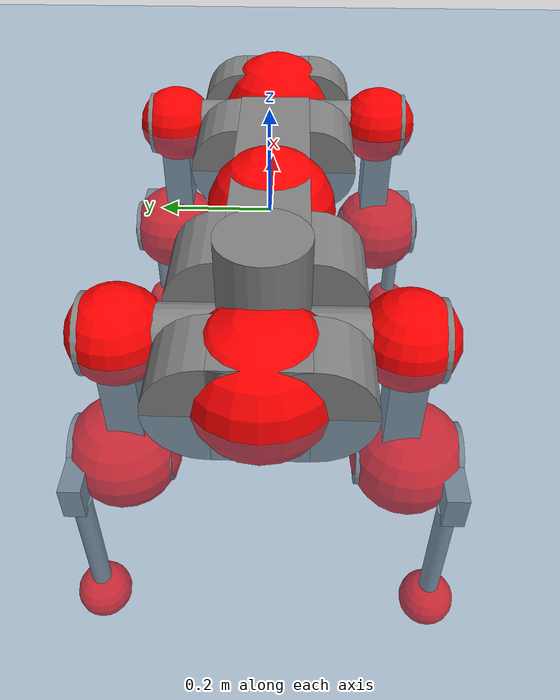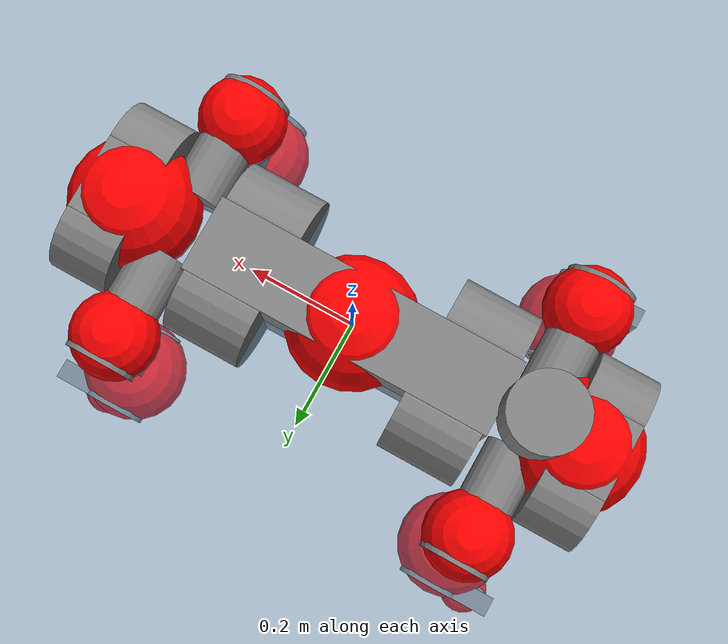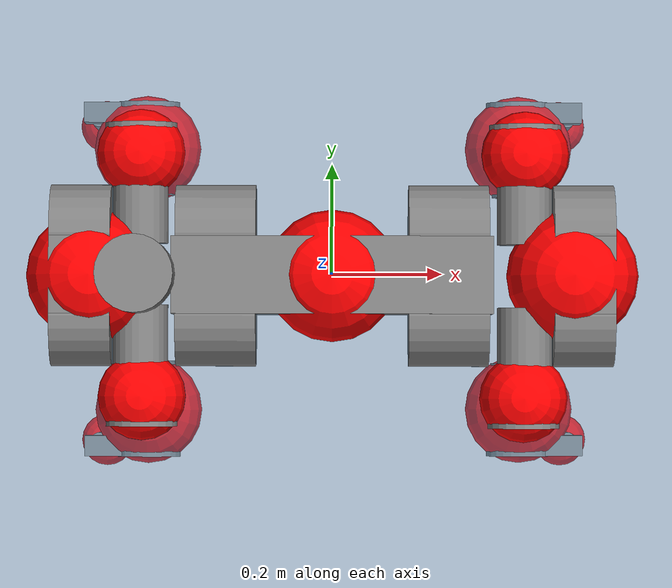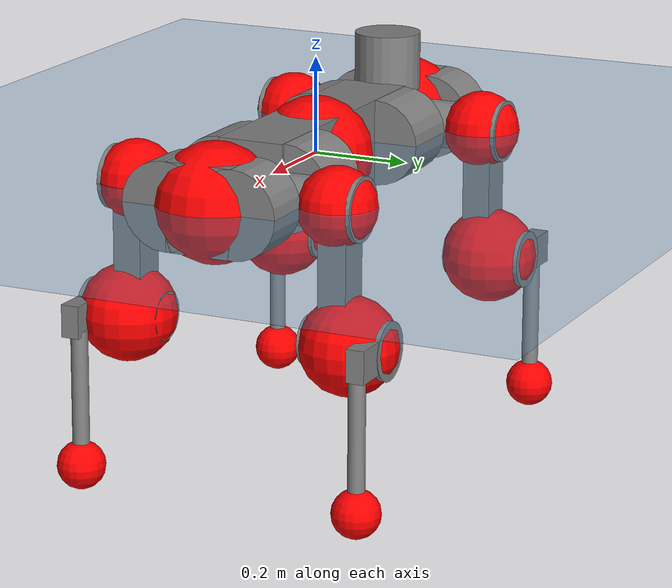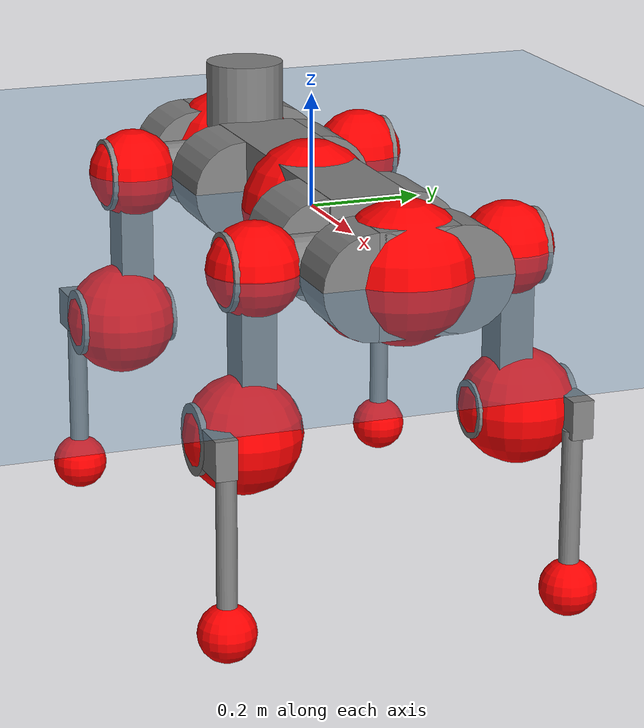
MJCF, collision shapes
<mujoco model="anymal_c">
  <compiler angle="radian" assetdir="assets" balanceinertia="true" inertiafromgeom="false"/>

  <option timestep="0.005" density="1.2" viscosity="2e-05"/>

  <size nkey="1"/>

  <visual>
    <quality shadowsize="8192"/>
    <map shadowclip="0.5"/>
  </visual>

  <default>
    <default class="/">
      <material specular="0" shininess="0.25"/>
      <geom contype="0" conaffinity="0" group="1" solref="-1000 -80"/>
      <site size="0.01 0.005 0.005" group="5"/>
      <general forcelimited="true" forcerange="-80 80" biastype="affine" gainprm="80" biasprm="0 -80 -2"/>
      <default class="anymal_c">
        <joint armature="0.01" damping="0.01" frictionloss="0.1"/>
        <default class="visual">
          <geom type="mesh" group="2"/>
          <default class="visual_zflip"/>
        </default>
        <default class="collision">
          <geom type="cylinder" group="3"/>
          <default class="foot">
            <geom size="0.03 0 0" type="sphere" condim="6" priority="1" friction="0.8 0.02 0.01" solimp="0.015 1 0.03"/>
          </default>
        </default>
      </default>
      <default class="reward_collision_sphere">
        <geom group="5" rgba="1 0 0 1"/>
      </default>
    </default>
  </default>

  <asset>
    <texture type="skybox" colorspace="auto" name="//unnamed_texture_0" builtin="gradient" rgb1="0.95 0.95 0.95" rgb2="0.95 0.95 0.95" width="100" height="600"/>
    <texture type="2d" colorspace="auto" name="texplane" builtin="checker" rgb1="0.345 0.575 0.748" rgb2="0.345 0.575 0.748" markrgb="1 1 1" width="512" height="512"/>
    <texture type="2d" colorspace="linear" name="base" file="base.png"/>
    <texture type="2d" colorspace="linear" name="top_shell" file="top_shell.png"/>
    <texture type="2d" colorspace="linear" name="bottom_shell" file="bottom_shell.png"/>
    <texture type="2d" colorspace="linear" name="remote" file="remote.png"/>
    <texture type="2d" colorspace="linear" name="hatch" file="hatch.png"/>
    <texture type="2d" colorspace="linear" name="handle" file="handle.png"/>
    <texture type="2d" colorspace="linear" name="face" file="face.png"/>
    <texture type="2d" colorspace="linear" name="battery" file="battery.png"/>
    <texture type="2d" colorspace="linear" name="lidar_cage" file="lidar_cage.png"/>
    <texture type="2d" colorspace="linear" name="depth_camera" file="depth_camera.png"/>
    <texture type="2d" colorspace="linear" name="wide_angle_camera" file="wide_angle_camera.png"/>
    <texture type="2d" colorspace="linear" name="lidar" file="lidar.png"/>
    <texture type="2d" colorspace="linear" name="drive" file="drive.png"/>
    <texture type="2d" colorspace="linear" name="hip_l" file="hip_l.png"/>
    <texture type="2d" colorspace="linear" name="shank_l" file="shank_l.png"/>
    <texture type="2d" colorspace="linear" name="foot" file="foot.png"/>
    <texture type="2d" colorspace="linear" name="thigh" file="thigh.png"/>
    <texture type="2d" colorspace="linear" name="shank_r" file="shank_r.png"/>
    <texture type="2d" colorspace="linear" name="hip_r" file="hip_r.png"/>
    <material name="MatPlane" class="/" texture="texplane" texuniform="true" texrepeat="2 2" specular="0.9" shininess="0.5"/>
    <material name="black_plastic" class="/" rgba="0.007 0.007 0.007 1"/>
    <material name="green" class="/" rgba="0.052 0.178 0.033 1"/>
    <material name="red" class="/" rgba="0.178 0.006 0.005 1"/>
    <material name="yellow" class="/" rgba="0.178 0.119 0.006 1"/>
    <material name="lwl" class="/" rgba="0.8 0.8 0.8 1"/>
    <material name="base" class="/" texture="base"/>
    <material name="top_shell" class="/" texture="top_shell"/>
    <material name="bottom_shell" class="/" texture="bottom_shell"/>
    <material name="hip_l" class="/" texture="hip_l"/>
    <material name="thigh" class="/" texture="thigh"/>
    <material name="shank_l" class="/" texture="shank_l"/>
    <material name="foot" class="/" texture="foot"/>
    <material name="hip_r" class="/" texture="hip_r"/>
    <material name="shank" class="/" texture="shank_r"/>
    <material name="hatch" class="/" texture="hatch"/>
    <material name="remote" class="/" texture="remote"/>
    <material name="handle" class="/" texture="handle"/>
    <material name="face" class="/" texture="face"/>
    <material name="depth_camera" class="/" texture="depth_camera"/>
    <material name="wide_angle_camera" class="/" texture="wide_angle_camera"/>
    <material name="battery" class="/" texture="battery"/>
    <material name="lidar_cage" class="/" texture="lidar_cage"/>
    <material name="lidar" class="/" texture="lidar"/>
    <material name="drive" class="/" texture="drive"/>
    <mesh name="base_0" class="/" file="base_0.obj"/>
    <mesh name="base_1" class="/" file="base_1.obj"/>
    <mesh name="base_2" class="/" file="base_2.obj"/>
    <mesh name="base_3" class="/" file="base_3.obj"/>
    <mesh name="base_4" class="/" file="base_4.obj"/>
    <mesh name="base_5" class="/" file="base_5.obj"/>
    <mesh name="top_shell" class="/" file="top_shell.obj"/>
    <mesh name="bottom_shell" class="/" file="bottom_shell.obj"/>
    <mesh name="remote" class="/" file="remote.obj"/>
    <mesh name="handle" class="/" file="handle.obj"/>
    <mesh name="face" class="/" file="face.obj"/>
    <mesh name="wide_angle_camera" class="/" file="wide_angle_camera.obj"/>
    <mesh name="depth_camera" class="/" file="depth_camera.obj"/>
    <mesh name="battery" class="/" file="battery.obj"/>
    <mesh name="lidar_cage" class="/" file="lidar_cage.obj"/>
    <mesh name="lidar" class="/" file="lidar.obj"/>
    <mesh name="drive" class="/" file="drive.obj"/>
    <mesh name="hip_l" class="/" file="hip_l.obj"/>
    <mesh name="thigh" class="/" file="thigh.obj"/>
    <mesh name="shank_l" class="/" file="shank_l.obj"/>
    <mesh name="foot" class="/" file="foot.obj"/>
    <mesh name="hip_r" class="/" file="hip_r.obj"/>
    <mesh name="hatch" class="/" file="hatch.obj"/>
    <mesh name="shank_r" class="/" file="shank_r.obj"/>
  </asset>

  <worldbody>
    <geom name="floor" class="/" size="100 100 0.125" type="plane" group="0" material="MatPlane"/>
    <light name="toplight_shadow" class="/" pos="0 0 5" dir="0.0990148 0.0990148 -0.990148" type="directional" ambient="0.04 0.04 0.04" diffuse="0.55 0.55 0.55" specular="0.12 0.12 0.12"/>
    <light name="toplight_fill" class="/" pos="0 0 5" dir="0.0990148 0.0990148 -0.990148" type="directional" castshadow="false" ambient="0.04 0.04 0.04" diffuse="0.3 0.3 0.3" specular="0.08 0.08 0.08"/>
    <body name="trunk" childclass="anymal_c" pos="0.000696274 -0.00236153 -0.0022806" quat="0.999999 -0.00107021 -0.000294047 -0.000369306">
      <inertial pos="-0.000508998 0.000564419 0.0494483" quat="0.494909 0.49406 0.510646 0.500211" mass="20.0417" diaginertia="0.564253 0.886468 0.193746"/>
      <joint name="//unnamed_joint_0" type="free" armature="0" damping="0" frictionloss="0"/>
      <geom name="//unnamed_geom_1" class="visual" material="green" mesh="base_0"/>
      <geom name="//unnamed_geom_2" class="visual" material="yellow" mesh="base_1"/>
      <geom name="//unnamed_geom_3" class="visual" material="red" mesh="base_2"/>
      <geom name="//unnamed_geom_4" class="visual" material="black_plastic" mesh="base_3"/>
      <geom name="//unnamed_geom_5" class="visual" material="lwl" mesh="base_4"/>
      <geom name="//unnamed_geom_6" class="visual" material="base" mesh="base_5"/>
      <geom name="trunk_1" class="collision" size="0.291151 0.0702778 0.0903572" type="box"/>
      <geom name="trunk_2" class="collision" size="0.0903572 0.0727877" pos="0.21142 0.0747474 0" quat="0.707107 0 0.707107 0"/>
      <geom name="trunk_3" class="collision" size="0.0903572 0.0727877" pos="-0.21142 0.0747474 0" quat="0.707107 0 0.707107 0"/>
      <geom name="trunk_4" class="collision" size="0.0903572 0.0727877" pos="0.21142 -0.0747474 0" quat="0.707107 0 0.707107 0"/>
      <geom name="trunk_5" class="collision" size="0.0903572 0.0727877" pos="-0.21142 -0.0747474 0" quat="0.707107 0 0.707107 0"/>
      <geom name="//unnamed_geom_12" class="visual" material="top_shell" mesh="top_shell"/>
      <geom name="//unnamed_geom_13" class="visual" material="bottom_shell" mesh="bottom_shell"/>
      <geom name="//unnamed_geom_14" class="visual" material="remote" mesh="remote"/>
      <geom name="//unnamed_geom_15" class="visual" material="handle" mesh="handle"/>
      <geom name="//unnamed_geom_16" class="visual" pos="0.402914 0 0" quat="1 0 0 0" material="face" mesh="face"/>
      <geom name="trunk_6" class="collision" size="0.0552183 0.0702778 0.0903572" pos="0.456376 0 0" type="box"/>
      <geom name="//unnamed_geom_18" class="collision" size="0.0903572 0.0552183" pos="0.456376 0.0747474 0" quat="0.707107 0 0.707107 0"/>
      <geom name="//unnamed_geom_19" class="collision" size="0.0903572 0.0552183" pos="0.456376 -0.0747474 0" quat="0.707107 0 0.707107 0"/>
      <geom name="//unnamed_geom_20" class="visual" pos="0.448746 0 -0.0283835" quat="0.965926 0 0.258819 0" material="depth_camera" mesh="depth_camera"/>
      <geom name="//unnamed_geom_21" class="visual" pos="0.49866 0 0.0145514" material="wide_angle_camera" mesh="wide_angle_camera"/>
      <geom name="//unnamed_geom_22" class="visual_zflip" pos="-0.402914 0 0" quat="0 0 0 1" material="face" mesh="face"/>
      <geom name="trunk_7" class="collision" size="0.0552183 0.0702778 0.0903572" pos="-0.456376 0 0" quat="0 0 0 1" type="box"/>
      <geom name="//unnamed_geom_24" class="collision" size="0.0903572 0.0552183" pos="-0.456376 -0.0747474 0" quat="0 -0.707107 0 0.707107"/>
      <geom name="//unnamed_geom_25" class="collision" size="0.0903572 0.0552183" pos="-0.456376 0.0747474 0" quat="0 -0.707107 0 0.707107"/>
      <geom name="//unnamed_geom_26" class="visual" pos="-0.448746 0 -0.0283835" quat="0 -0.258819 0 0.965926" material="depth_camera" mesh="depth_camera"/>
      <geom name="//unnamed_geom_27" class="visual_zflip" pos="-0.49866 0 0.0145514" quat="0 0 0 1" material="wide_angle_camera" mesh="wide_angle_camera"/>
      <geom name="//unnamed_geom_28" class="visual" material="battery" mesh="battery"/>
      <geom name="//unnamed_geom_29" class="visual" pos="0 0.0829023 0.0282378" quat="0.683013 -0.183013 0.183013 0.683013" material="depth_camera" mesh="depth_camera"/>
      <geom name="//unnamed_geom_30" class="visual" pos="0 -0.0829023 0.0282378" quat="0.683013 0.183013 0.183013 -0.683013" material="depth_camera" mesh="depth_camera"/>
      <geom name="//unnamed_geom_31" class="visual" pos="-0.353825 0 0.0714449" quat="1 0 0 0" material="lidar_cage" mesh="lidar_cage"/>
      <geom name="trunk_8" class="collision" size="0.0702778 0.0602381" pos="-0.353825 0 0.129767"/>
      <geom name="//unnamed_geom_33" class="visual" pos="-0.353825 3.76266e-05 0.138224" quat="0.707107 0 0 -0.707107" material="lidar" mesh="lidar"/>
      <geom name="//unnamed_geom_34" class="visual" pos="0.291517 0.111019 1.65223e-09" quat="0.258819 0.965926 0 0" material="drive" mesh="drive"/>
      <geom name="//unnamed_geom_35" class="visual" pos="0.291517 -0.111019 -1.65223e-09" quat="0.258819 -0.965926 0 0" material="drive" mesh="drive"/>
      <geom name="//unnamed_geom_36" class="visual" pos="-0.291517 0.111019 -1.65223e-09" quat="0 0 0.965926 -0.258819" material="drive" mesh="drive"/>
      <geom name="//unnamed_geom_37" class="visual" pos="-0.291517 -0.111019 1.65223e-09" quat="0 0 -0.965926 -0.258819" material="drive" mesh="drive"/>
      <geom name="//unnamed_geom_38" class="visual" pos="0.112757 0 0.0709589" quat="1 0 0 0" material="hatch" mesh="hatch"/>
      <geom name="//unnamed_geom_39" class="reward_collision_sphere" size="0.120476"/>
      <geom name="//unnamed_geom_40" class="reward_collision_sphere" size="0.120476" pos="0.437421 0 0"/>
      <geom name="//unnamed_geom_41" class="reward_collision_sphere" size="0.120476" pos="-0.437421 0 0"/>
      <site name="imu" pos="0.243297 0.00453812 0.0405653" size="0.0100397"/>
      <camera name="track" pos="0 -2.13564 0" quat="0.707107 0.707107 0 0" mode="trackcom"/>
      <camera name="ego_camera" pos="0.437421 0 -0.0388816" quat="-0.5 -0.5 0.5 0.5"/>
      <body name="LF_HIP" pos="0.291768 0.112136 0.00169166" quat="0.258732 0.965949 0.0005987 -0.00016562">
        <inertial pos="0.0553336 -0.0175658 -0.00781067" quat="-0.12961 0.711732 -0.128395 0.678346" mass="2.8263" diaginertia="0.00521607 0.00669666 0.00293648"/>
        <joint name="LF_HAA" pos="0 0 0" axis="0.999871 0.00383731 0.0155704" range="-0.774502 0.46832" armature="0.0105151" damping="0.00436657" frictionloss="0.102181"/>
        <geom name="//unnamed_geom_42" class="visual" pos="0 9.7193e-05 -1.59639e-05" quat="0.258819 -0.965926 0 0" material="hip_l" mesh="hip_l"/>
        <geom name="//unnamed_geom_43" class="visual" pos="0.0582256 -0.0717797 -0.0407336" quat="0.183013 -0.683013 0.683013 0.183013" material="drive" mesh="drive"/>
        <geom name="//unnamed_geom_44" class="collision" size="0.0501984 0.0702778" pos="0.0582256 -0.0127709 -0.00671193" quat="-0.353553 -0.612372 0.612372 -0.353553"/>
        <body name="LF_THIGH" pos="0.0598146 -0.0747897 -0.0381572" quat="0.18296 -0.68275 0.683327 0.18287">
          <inertial pos="0.0307276 -0.000814795 -0.239511" quat="0.992395 -0.0158296 -0.0798656 0.0923255" mass="3.20273" diaginertia="0.025901 0.041142 0.00363132"/>
          <joint name="LF_HFE" pos="0 0 0" axis="0.999939 -0.00701898 0.00853222" stiffness="0.0144083" range="-3.18837 3.13522" armature="0.00973048" damping="0.0109757" frictionloss="0.0867918"/>
          <geom name="//unnamed_geom_45" class="visual" pos="-0.00190551 -3.00263e-06 0" quat="0.707107 0 0 -0.707107" material="thigh" mesh="thigh"/>
          <geom name="//unnamed_geom_46" class="collision" size="0.065258 0.0401588" pos="0.0388819 0 0" quat="0.5 0.5 -0.5 -0.5"/>
          <geom name="//unnamed_geom_47" class="collision" size="0.0376488 0.0301191 0.141875" pos="0.0291614 0 -0.137363" quat="0.707107 0 0 -0.707107" type="box"/>
          <geom name="//unnamed_geom_48" class="visual" pos="0.0974963 0 -0.277031" quat="1 0 0 0" material="drive" mesh="drive"/>
          <geom name="//unnamed_geom_49" class="collision" size="0.0501984 0.0702778" pos="0.029453 0 -0.277031" quat="0.707107 0 0.707107 0"/>
          <geom name="//unnamed_geom_50" class="reward_collision_sphere" size="0.0803175" pos="0.0243012 0 0"/>
          <body name="LF_SHANK" pos="0.0983023 0.000684801 -0.277443" quat="1 0.000160926 4.23777e-05 0.000179018">
            <inertial pos="0.0045831 -0.0678851 -0.0799418" quat="0.99229 -0.119207 -0.0115085 -0.0318938" mass="0.594481" diaginertia="0.00856064 0.012459 0.000944197"/>
            <joint name="LF_KFE" pos="0 0 0" axis="0.99998 0.00357678 0.00530926" stiffness="0.00822281" range="-3.15747 3.17249" armature="0.00856353" damping="0.00238414" frictionloss="0.11236"/>
            <geom name="//unnamed_geom_51" class="visual" pos="-0.000621344 -0.00331304 0" quat="0.707107 0 0 -0.707107" material="shank_l" mesh="shank_l"/>
            <geom name="LF_kfe_act" class="collision" size="0.0602381 0.0200794" pos="0.0194409 0 0" quat="0.5 0.5 -0.5 -0.5"/>
            <geom name="//unnamed_geom_53" class="collision" size="0.0577272 0.0338839 0.0190754" pos="0.0194409 -0.0613986 0" quat="0.5 0.5 -0.5 -0.5" type="box"/>
            <geom name="//unnamed_geom_54" class="visual" pos="0.0126854 -0.0949824 -0.32852" quat="0.382683 0 0 -0.92388" material="foot" mesh="foot"/>
            <geom name="LF_calf" class="collision" size="0.0175695 0.141813" pos="0.0126852 -0.0939148 -0.16426" quat="0.707107 0 0 -0.707107"/>
            <geom name="LF_foot" class="foot" size="0.0277396" pos="0.0126852 -0.0939148 -0.306649" quat="0.707107 0 0 -0.707107"/>
            <geom name="//unnamed_geom_57" class="reward_collision_sphere" size="0.100397" pos="-0.0486024 0 0"/>
            <geom name="//unnamed_geom_58" class="reward_collision_sphere" size="0.0501984" pos="0.0126852 -0.0939148 -0.306649"/>
            <site name="LF_foot" class="foot" pos="0.0126852 -0.0939148 -0.306649" quat="0.707107 0 0 -0.707107" size="0.0100397"/>
          </body>
        </body>
      </body>
      <body name="RF_HIP" pos="0.292362 -0.114188 0.00364551" quat="0.259091 -0.965853 -0.000394017 -0.000819435">
        <inertial pos="0.0549546 0.0195853 -0.0107382" quat="0.134712 0.680767 0.128979 0.70836" mass="2.69417" diaginertia="0.00489881 0.00683756 0.00291597"/>
        <joint name="RF_HAA" pos="0 0 0" axis="0.999885 0.00031892 0.0151608" stiffness="0.00630204" range="-0.503086 0.741882" armature="0.00867921" damping="0.00400546" frictionloss="0.11089"/>
        <geom name="//unnamed_geom_59" class="visual" pos="0 -9.71923e-05 -1.59638e-05" quat="0.258819 0.965926 0 0" material="hip_r" mesh="hip_r"/>
        <geom name="//unnamed_geom_60" class="visual" pos="0.0582256 0.0717797 -0.0407336" quat="0.183013 0.683013 0.683013 -0.183013" material="drive" mesh="drive"/>
        <geom name="//unnamed_geom_61" class="collision" size="0.0501984 0.0702778" pos="0.0582256 0.0127709 -0.00671193" quat="-0.353553 0.612372 0.612372 0.353553"/>
        <body name="RF_THIGH" pos="0.0558144 0.0743486 -0.0404221" quat="0.183058 0.683315 0.682574 -0.183475">
          <inertial pos="0.0328165 -0.00252926 -0.238559" quat="0.994182 -0.00671405 -0.0714358 0.0803385" mass="3.17145" diaginertia="0.025327 0.0412942 0.0036132"/>
          <joint name="RF_HFE" pos="0 0 0" axis="0.999988 0.00494511 -3.07286e-05" range="-3.12459 3.18947" armature="0.00975256" damping="0.0133915" frictionloss="0.0875867"/>
          <geom name="//unnamed_geom_62" class="visual" pos="-0.00190551 -3.00263e-06 0" quat="0.707107 0 0 -0.707107" material="thigh" mesh="thigh"/>
          <geom name="//unnamed_geom_63" class="collision" size="0.065258 0.0401588" pos="0.0388819 0 0" quat="0.5 0.5 0.5 0.5"/>
          <geom name="//unnamed_geom_64" class="collision" size="0.0376488 0.0301191 0.141875" pos="0.0291614 0 -0.137363" quat="0.707107 0 0 0.707107" type="box"/>
          <geom name="//unnamed_geom_65" class="visual" pos="0.0974963 0 -0.277031" quat="1 0 0 0" material="drive" mesh="drive"/>
          <geom name="//unnamed_geom_66" class="collision" size="0.0501984 0.0702778" pos="0.029453 0 -0.277031" quat="0.707107 0 0.707107 0"/>
          <geom name="//unnamed_geom_67" class="reward_collision_sphere" size="0.0803175" pos="0.0243012 0 0"/>
          <body name="RF_SHANK" pos="0.0945046 0.00227601 -0.27756" quat="1 -0.000428364 -0.000306293 0.000436558">
            <inertial pos="0.00287014 0.0678094 -0.0791609" quat="0.994162 0.104425 -0.00839186 0.0258138" mass="0.590548" diaginertia="0.00844662 0.0130489 0.000930779"/>
            <joint name="RF_KFE" pos="0 0 0" axis="1 -0.000254915 -0.000633958" range="-3.07949 3.17522" armature="0.00980122" damping="0.0091791" frictionloss="0.0874103"/>
            <geom name="//unnamed_geom_68" class="visual" pos="-0.00062134 0.00331303 0" quat="0.707107 0 0 0.707107" material="shank" mesh="shank_r"/>
            <geom name="RF_kfe_act" class="collision" size="0.0602381 0.0200794" pos="0.0194409 0 0" quat="0.5 0.5 0.5 0.5"/>
            <geom name="//unnamed_geom_70" class="collision" size="0.0577272 0.0338839 0.0190754" pos="0.0194409 0.0613986 0" quat="0.5 0.5 0.5 0.5" type="box"/>
            <geom name="//unnamed_geom_71" class="visual" pos="0.0126851 0.0949824 -0.32852" quat="0.382683 0 0 0.92388" material="foot" mesh="foot"/>
            <geom name="RF_calf" class="collision" size="0.0175695 0.141813" pos="0.0126852 0.0939148 -0.16426" quat="0.707107 0 0 0.707107"/>
            <geom name="RF_foot" class="foot" size="0.0315993" pos="0.0126852 0.0939148 -0.306649" quat="0.707107 0 0 0.707107"/>
            <geom name="//unnamed_geom_74" class="reward_collision_sphere" size="0.100397" pos="-0.0486024 0 0"/>
            <geom name="//unnamed_geom_75" class="reward_collision_sphere" size="0.0501984" pos="0.0126852 0.0939148 -0.306649"/>
            <site name="RF_foot" class="foot" pos="0.0126852 0.0939148 -0.306649" quat="0.707107 0 0 0.707107" size="0.0100397"/>
          </body>
        </body>
      </body>
      <body name="LH_HIP" pos="-0.290867 0.114278 0.00296158" quat="-0.000154073 -0.000428704 0.965879 -0.258995">
        <inertial pos="0.0564032 0.0144622 -0.00558997" quat="0.137931 0.675421 0.122656 0.713959" mass="2.75424" diaginertia="0.00484396 0.0063723 0.00285322"/>
        <joint name="LH_HAA" pos="0 0 0" axis="0.999934 -0.0113499 0.00190726" stiffness="0.000657143" range="-0.468296 0.673791" armature="0.00925662" damping="0.0133985" frictionloss="0.109393"/>
        <geom name="//unnamed_geom_76" class="visual" pos="0 -9.71923e-05 -1.59638e-05" quat="-0.258819 -0.965926 0 0" material="hip_r" mesh="hip_r"/>
        <geom name="//unnamed_geom_77" class="visual" pos="0.0582256 0.0717797 -0.0407336" quat="0.183013 0.683013 0.683013 -0.183013" material="drive" mesh="drive"/>
        <geom name="//unnamed_geom_78" class="collision" size="0.0501984 0.0702778" pos="0.0582256 0.0127709 -0.00671193" quat="-0.353553 0.612372 0.612372 0.353553"/>
        <body name="LH_THIGH" pos="0.0576631 0.0743501 -0.0408578" quat="0.182996 0.682973 0.683038 -0.183081">
          <inertial pos="0.0290124 -0.00138521 -0.236098" quat="0.99295 0.00384338 -0.079672 0.0876755" mass="3.1207" diaginertia="0.0253223 0.0428464 0.00366061"/>
          <joint name="LH_HFE" pos="0 0 0" axis="0.999985 0.0047749 0.00281397" range="-3.14735 3.16023" armature="0.0112246" damping="0.0181595" frictionloss="0.0868036"/>
          <geom name="//unnamed_geom_79" class="visual" pos="-0.00190551 -3.00263e-06 0" quat="0.707107 0 0 -0.707107" material="thigh" mesh="thigh"/>
          <geom name="//unnamed_geom_80" class="collision" size="0.065258 0.0401588" pos="0.0388819 0 0" quat="0.5 0.5 -0.5 -0.5"/>
          <geom name="//unnamed_geom_81" class="collision" size="0.0376488 0.0301191 0.141875" pos="0.0291614 0 -0.137363" quat="0.707107 0 0 -0.707107" type="box"/>
          <geom name="//unnamed_geom_82" class="visual" pos="0.0974963 0 -0.277031" quat="1 0 0 0" material="drive" mesh="drive"/>
          <geom name="//unnamed_geom_83" class="collision" size="0.0501984 0.0702778" pos="0.029453 0 -0.277031" quat="0.707107 0 0.707107 0"/>
          <geom name="//unnamed_geom_84" class="reward_collision_sphere" size="0.0803175" pos="0.0243012 0 0"/>
          <body name="LH_SHANK" pos="0.0951906 -0.000119406 -0.274278" quat="0.999999 0.000656917 6.4296e-05 -0.00112963">
            <inertial pos="0.00517997 0.0667051 -0.0778895" quat="0.993102 0.114296 -0.00460554 0.0257625" mass="0.583638" diaginertia="0.0086604 0.0126106 0.000958595"/>
            <joint name="LH_KFE" pos="0 0 0" axis="0.999998 -0.00135018 -0.00165938" range="-3.15161 3.14398" armature="0.00962289" damping="0.0175578" frictionloss="0.0879923"/>
            <geom name="//unnamed_geom_85" class="visual" pos="-0.00062134 0.00331303 0" quat="-0.707107 0 0 -0.707107" material="shank" mesh="shank_r"/>
            <geom name="LH_kfe_act" class="collision" size="0.0602381 0.0200794" pos="0.0194409 0 0" quat="0.5 0.5 -0.5 -0.5"/>
            <geom name="//unnamed_geom_87" class="collision" size="0.0577272 0.0338839 0.0190754" pos="0.0194409 0.0613986 0" quat="0.5 0.5 -0.5 -0.5" type="box"/>
            <geom name="//unnamed_geom_88" class="visual" pos="0.0126851 0.0949824 -0.32852" quat="-0.382683 0 0 -0.92388" material="foot" mesh="foot"/>
            <geom name="LH_calf" class="collision" size="0.0175695 0.141813" pos="0.0126852 0.0939148 -0.16426" quat="0.707107 0 0 -0.707107"/>
            <geom name="LH_foot" class="foot" size="0.0313925" pos="0.0126852 0.0939148 -0.306649" quat="0.707107 0 0 -0.707107"/>
            <geom name="//unnamed_geom_91" class="reward_collision_sphere" size="0.100397" pos="-0.0486024 0 0"/>
            <geom name="//unnamed_geom_92" class="reward_collision_sphere" size="0.0501984" pos="0.0126852 0.0939148 -0.306649"/>
            <site name="LH_foot" class="foot" pos="0.0126852 0.0939148 -0.306649" quat="0.707107 0 0 -0.707107" size="0.0100397"/>
          </body>
        </body>
      </body>
      <body name="RH_HIP" pos="-0.29083 -0.10906 9.86783e-05" quat="-0.000245247 0.000480246 -0.96595 -0.258729">
        <inertial pos="0.0542281 -0.0186628 -0.00877062" quat="-0.12645 0.710626 -0.136293 0.678561" mass="2.70862" diaginertia="0.00488776 0.0067772 0.00270839"/>
        <joint name="RH_HAA" pos="0 0 0" axis="0.999999 0.00117942 0.000981537" stiffness="0.00201556" range="-0.751365 0.537476" armature="0.010191" damping="0.00600901" frictionloss="0.113361"/>
        <geom name="//unnamed_geom_93" class="visual" pos="0 9.7193e-05 -1.59639e-05" quat="-0.258819 0.965926 0 0" material="hip_l" mesh="hip_l"/>
        <geom name="//unnamed_geom_94" class="visual" pos="0.0582256 -0.0717797 -0.0407336" quat="-0.183013 0.683013 -0.683013 -0.183013" material="drive" mesh="drive"/>
        <geom name="//unnamed_geom_95" class="collision" size="0.0501984 0.0702778" pos="0.0582256 -0.0127709 -0.00671193" quat="0.353553 0.612372 -0.612372 0.353553"/>
        <body name="RH_THIGH" pos="0.0557781 -0.0756375 -0.0417898" quat="-0.182482 0.683833 -0.682497 -0.182405">
          <inertial pos="0.0299678 -0.00192266 -0.237861" quat="0.992974 -0.00563791 -0.0802157 0.0868112" mass="3.25651" diaginertia="0.0268249 0.0412032 0.00359161"/>
          <joint name="RH_HFE" pos="0 0 0" axis="0.999991 -0.00350991 -0.00240932" stiffness="0.00347716" range="-3.15741 3.1203" armature="0.0103172" damping="0.0149814" frictionloss="0.104031"/>
          <geom name="//unnamed_geom_96" class="visual" pos="-0.00190551 -3.00263e-06 0" quat="0.707107 0 0 -0.707107" material="thigh" mesh="thigh"/>
          <geom name="//unnamed_geom_97" class="collision" size="0.065258 0.0401588" pos="0.0388819 0 0" quat="0.5 0.5 0.5 0.5"/>
          <geom name="//unnamed_geom_98" class="collision" size="0.0376488 0.0301191 0.141875" pos="0.0291614 0 -0.137363" quat="0.707107 0 0 0.707107" type="box"/>
          <geom name="//unnamed_geom_99" class="visual" pos="0.0974963 0 -0.277031" quat="1 0 0 0" material="drive" mesh="drive"/>
          <geom name="//unnamed_geom_100" class="collision" size="0.0501984 0.0702778" pos="0.029453 0 -0.277031" quat="0.707107 0 0.707107 0"/>
          <geom name="//unnamed_geom_101" class="reward_collision_sphere" size="0.0803175" pos="0.0243012 0 0"/>
          <body name="RH_SHANK" pos="0.0998903 0.000468874 -0.275465" quat="1 -3.71138e-05 5.47925e-05 -3.77322e-05">
            <inertial pos="0.00267925 -0.0644481 -0.0786186" quat="0.992956 -0.11581 0.000588981 -0.025034" mass="0.616297" diaginertia="0.00910107 0.013344 0.000980839"/>
            <joint name="RH_KFE" pos="0 0 0" axis="0.999979 0.00585261 0.00287499" stiffness="0.00352855" range="-3.12256 3.19045" armature="0.0101201" damping="0.00492971" frictionloss="0.114118"/>
            <geom name="//unnamed_geom_102" class="visual" pos="-0.000621344 -0.00331304 0" quat="0.707107 0 0 -0.707107" material="shank_l" mesh="shank_l"/>
            <geom name="RH_kfe_act" class="collision" size="0.0602381 0.0200794" pos="0.0194409 0 0" quat="0.5 0.5 0.5 0.5"/>
            <geom name="//unnamed_geom_104" class="collision" size="0.0577272 0.0338839 0.0190754" pos="0.0194409 -0.0613986 0" quat="0.5 0.5 0.5 0.5" type="box"/>
            <geom name="//unnamed_geom_105" class="visual" pos="0.0126854 -0.0949824 -0.32852" quat="0.382683 0 0 -0.92388" material="foot" mesh="foot"/>
            <geom name="RH_calf" class="collision" size="0.0175695 0.141813" pos="0.0126852 -0.0939148 -0.16426" quat="0.707107 0 0 0.707107"/>
            <geom name="RH_foot" class="foot" size="0.0284627" pos="0.0126852 -0.0939148 -0.306649" quat="0.707107 0 0 0.707107"/>
            <geom name="//unnamed_geom_108" class="reward_collision_sphere" size="0.100397" pos="-0.0486024 0 0"/>
            <geom name="//unnamed_geom_109" class="reward_collision_sphere" size="0.0501984" pos="0.0126852 -0.0939148 -0.306649"/>
            <site name="RH_foot" class="foot" pos="0.0126852 -0.0939148 -0.306649" quat="0.707107 0 0 0.707107" size="0.0100397"/>
          </body>
        </body>
      </body>
    </body>
  </worldbody>

  <contact>
    <pair class="/" geom1="floor" geom2="LF_foot" name="//unnamed_contact_0"/>
    <pair class="/" geom1="floor" geom2="RF_foot" name="//unnamed_contact_1"/>
    <pair class="/" geom1="floor" geom2="LH_foot" name="//unnamed_contact_2"/>
    <pair class="/" geom1="floor" geom2="RH_foot" name="//unnamed_contact_3"/>
  </contact>

  <actuator>
    <general name="LF_HAA" class="/" joint="LF_HAA" forcerange="-89.7206 89.7206" gainprm="81.7783" biasprm="0 -81.7783 -2.24397"/>
    <general name="LF_HFE" class="/" joint="LF_HFE" forcerange="-80.1144 80.1144" gainprm="81.7783" biasprm="0 -81.7783 -2.24397"/>
    <general name="LF_KFE" class="/" joint="LF_KFE" forcerange="-78.5407 78.5407" gainprm="81.7783" biasprm="0 -81.7783 -2.24397"/>
    <general name="RF_HAA" class="/" joint="RF_HAA" forcerange="-72.1797 72.1797" gainprm="81.7783" biasprm="0 -81.7783 -2.24397"/>
    <general name="RF_HFE" class="/" joint="RF_HFE" forcerange="-81.1634 81.1634" gainprm="81.7783" biasprm="0 -81.7783 -2.24397"/>
    <general name="RF_KFE" class="/" joint="RF_KFE" forcerange="-74.4455 74.4455" gainprm="81.7783" biasprm="0 -81.7783 -2.24397"/>
    <general name="LH_HAA" class="/" joint="LH_HAA" forcerange="-74.7469 74.7469" gainprm="81.7783" biasprm="0 -81.7783 -2.24397"/>
    <general name="LH_HFE" class="/" joint="LH_HFE" forcerange="-79.8695 79.8695" gainprm="81.7783" biasprm="0 -81.7783 -2.24397"/>
    <general name="LH_KFE" class="/" joint="LH_KFE" forcerange="-88.8517 88.8517" gainprm="81.7783" biasprm="0 -81.7783 -2.24397"/>
    <general name="RH_HAA" class="/" joint="RH_HAA" forcerange="-72.549 72.549" gainprm="81.7783" biasprm="0 -81.7783 -2.24397"/>
    <general name="RH_HFE" class="/" joint="RH_HFE" forcerange="-88.9399 88.9399" gainprm="81.7783" biasprm="0 -81.7783 -2.24397"/>
    <general name="RH_KFE" class="/" joint="RH_KFE" forcerange="-82.3137 82.3137" gainprm="81.7783" biasprm="0 -81.7783 -2.24397"/>
  </actuator>

  <sensor>
    <gyro site="imu" name="imu_angular_velocity"/>
    <velocimeter site="imu" name="imu_linear_velocity"/>
    <framelinvel objtype="site" objname="LF_foot" name="LF_foot_global_linear_velocity"/>
    <framelinvel objtype="site" objname="RF_foot" name="RF_foot_global_linear_velocity"/>
    <framelinvel objtype="site" objname="LH_foot" name="LH_foot_global_linear_velocity"/>
    <framelinvel objtype="site" objname="RH_foot" name="RH_foot_global_linear_velocity"/>
  </sensor>

  <keyframe>
    <key name="home" qpos="0 0 0.55 1 0 0 0 0 0.4 -0.8 0 -0.4 0.8 0 -0.4 0.8 0 0.4 -0.8"/>
  </keyframe>
</mujoco>
